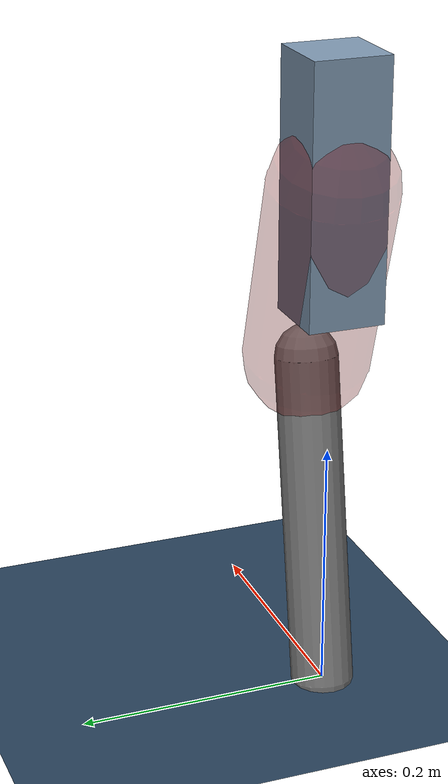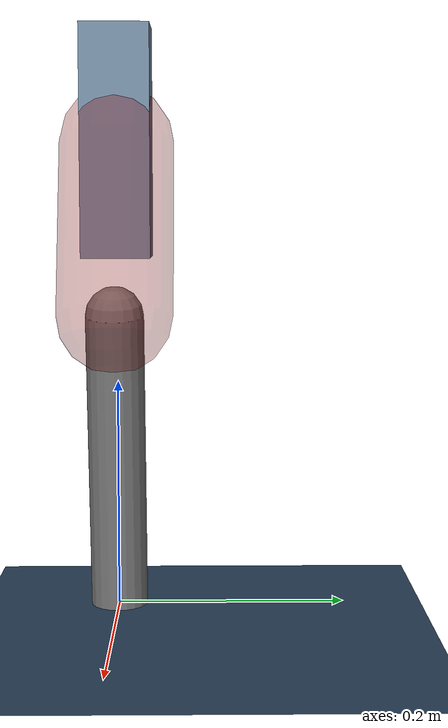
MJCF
<mujoco model="Hopper2D">
	<compiler inertiafromgeom="true" angle="radian" />
	<option timestep="0.001" integrator="implicit" cone="elliptic" solver="Newton" tolerance="1e-10" />

	<default>
		<geom contype="1" conaffinity="1" condim="3" friction="2 0.005 0.0001" solref="0.005 1" />
		<joint limited="true" damping="0.1" />
	</default>

	<asset>
		<texture name="skybox" type="skybox" builtin="gradient" rgb1=".4 .6 .8" rgb2="0 0 0" width="800" height="800" />
		<texture name="grid" type="2d" builtin="checker" rgb1=".1 .2 .3" rgb2=".2 .3 .4" width="300" height="300" mark="edge" markrgb=".2 .3 .4" />
		<material name="ground" texture="grid" texrepeat="1 1" texuniform="true" reflectance="0.1" />
		<material name="leg" rgba="0.5 0.6 0.7 1" />
	</asset>

	<worldbody>

		<geom name="floor" type="plane" size="5 5 0.25" material="ground" />

		<light directional="false" diffuse="0.8 0.8 0.8" specular="0.3 0.3 0.3" pos="0 0 2" dir="0 0 -1" />
		<light mode="targetbodycom" target="base" directional="false" diffuse="0.8 0.8 0.8" specular="0.3 0.3 0.3" pos="0 0 2" dir="0 0 -1" />

		<camera name="fixed" pos="0 -2 1" xyaxes="1 0 0 0 0 1" />
		<camera name="tracking" mode="trackcom" pos="0 -3 1" />

		<body name="root" pos="0 0 0.41017599209961286">
			<joint name="slide_x" type="slide" axis="1 0 0" range="-100 100" />
			<joint name="slide_z" type="slide" axis="0 0 1" range="0 10" />

			<body name="base" pos="0 0 0">
				<geom name="torso" type="box" size="0.03 0.03 0.1" mass="2.7489999999999997" material="leg" />

				<body name="link1" pos="0 0 0" euler="0 1.2824652877103453 0">
					<joint type="hinge" axis="0 -1 0" pos="0 0 0" name="hinge1" limited="true" range="-3.14 3.14" stiffness="0" damping="0.1" />
					<geom name="thigh" type="capsule" fromto="0 0 0 0.15415625421439208 0 0" size="0.05" rgba="0.5 0 0 0.3" mass="0.618375010114541" />

					<body name="link2" pos="0.15415625421439208 0 0" euler="0 0.4538659686641792 0">
						<joint type="hinge" axis="0 -1 0" pos="0 0 0" name="hinge2" limited="true" range="-3.14 3.14" stiffness="0" damping="0.1" />
						<geom name="shank" type="capsule" fromto="0 0 0 0.2660197378852208 0 0" size="0.025" mass="0.45571579030817666" />

					</body>
				</body>
			</body>
		</body>
	</worldbody>

	<actuator>
		<motor name="torque1" joint="hinge1" ctrlrange="-172.39712330103174 172.39712330103174" ctrllimited="true" gear="1" />
		<motor name="torque2" joint="hinge2" ctrlrange="-12.146644881943326 12.146644881943326" ctrllimited="true" gear="1" />
	</actuator>
</mujoco>
